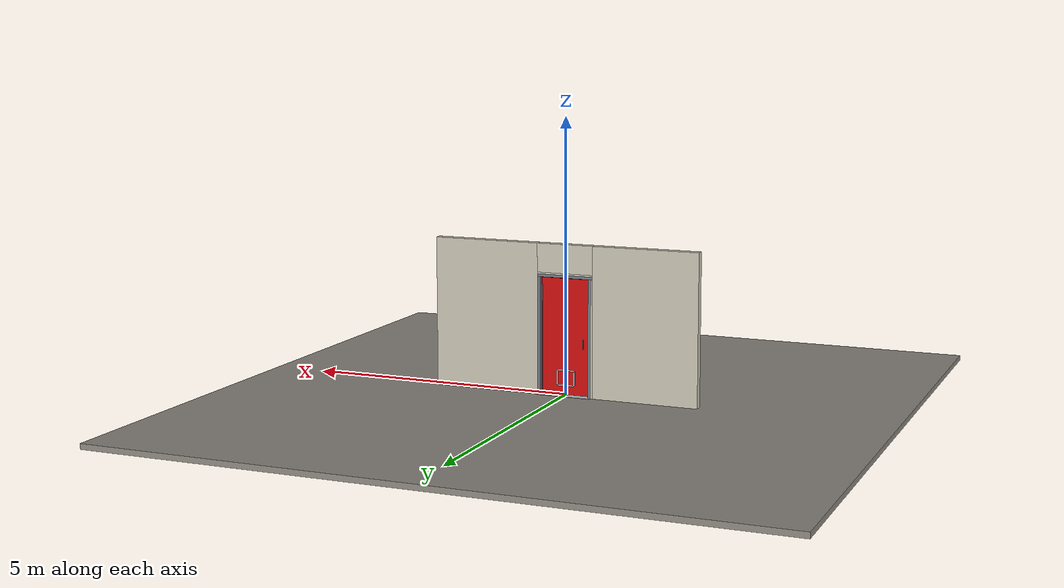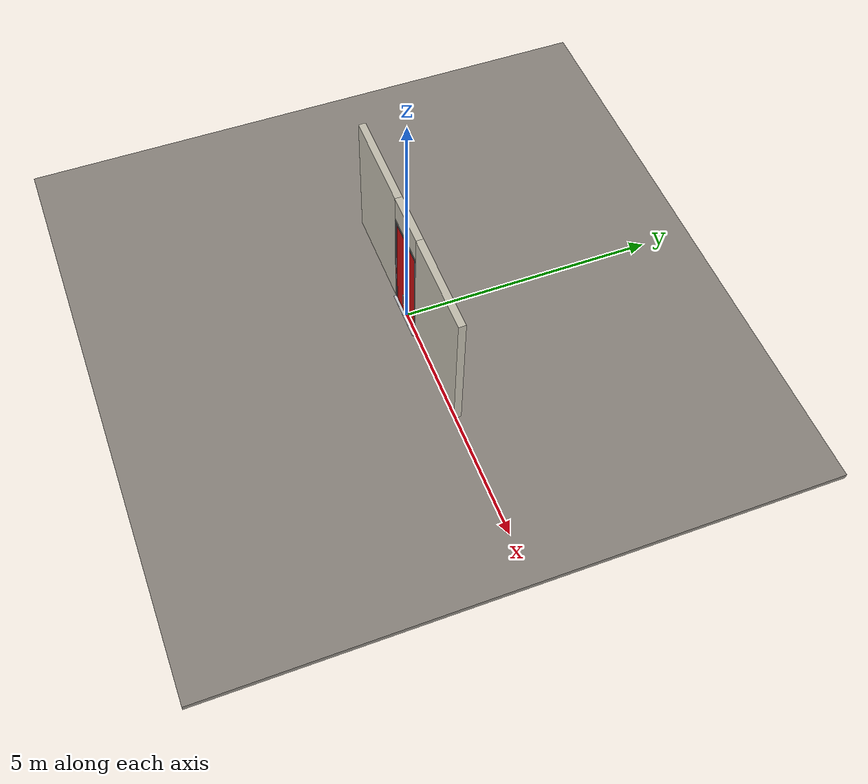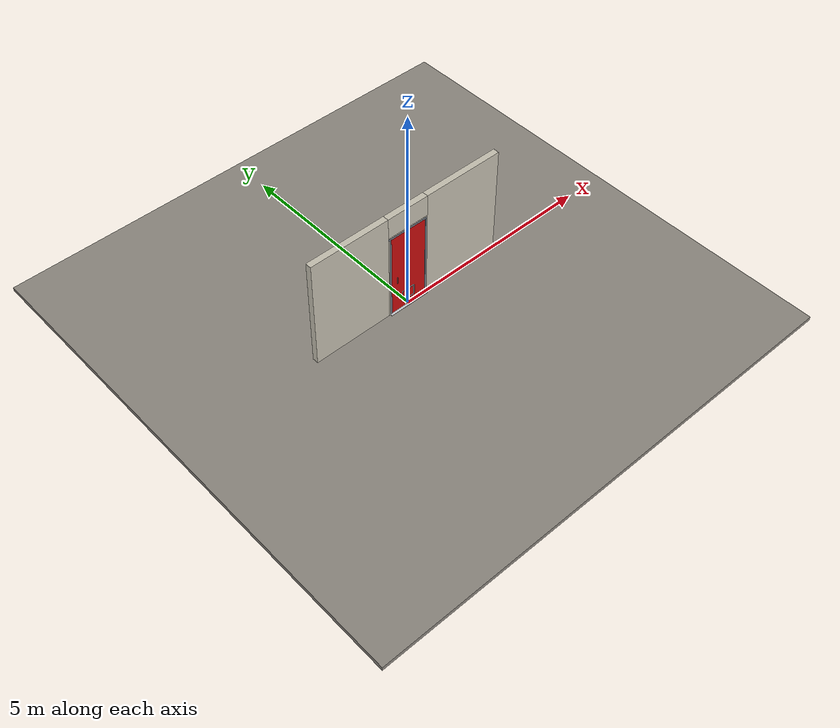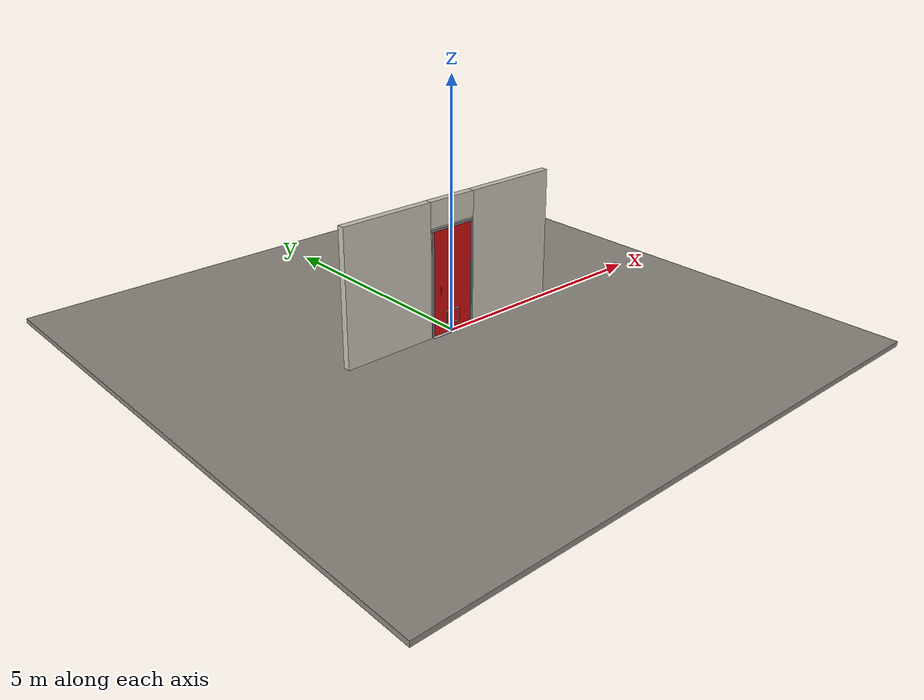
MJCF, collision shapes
<?xml version="1.0" ?>
<mujoco model="db0519_swing_single_full">
  <compiler angle="radian" meshdir="../../hardware" texturedir="../../textures" autolimits="true" inertiafromgeom="false"/>
  <option timestep="0.002" integrator="implicitfast" cone="elliptic" impratio="10" noslip_iterations="3">
    <flag multiccd="enable"/>
  </option>
  <size memory="16M"/>
  <default>
    <geom condim="4" solref="0.005 1" solimp="0.95 0.99 0.001"/>
    <joint solreflimit="0.005 1" solimplimit="0.95 0.99 0.001"/>
    <tendon solreflimit="0.005 1"/>
    <equality solref="0.002 1"/>
  </default>
  <visual>
    <headlight ambient="0.4 0.4 0.4" diffuse="0.7 0.7 0.7" specular="0.2 0.2 0.2"/>
    <quality shadowsize="4096"/>
    <map znear="0.01" zfar="60"/>
  </visual>
  <asset>
    <mesh name="hinge_e22b26c0c1" file="hinge_e22b26c0c1.obj"/>
    <mesh name="hinge_jamb_e1d088f8dc" file="hinge_jamb_e1d088f8dc.obj"/>
    <mesh name="pull_1e5d69a91a" file="pull_1e5d69a91a.obj"/>
    <material name="mat_floor" rgba="0.55 0.53 0.5 1" specular="0.2" shininess="0.15" reflectance="0"/>
    <material name="mat_wall" rgba="0.78 0.76 0.7 1" specular="0.2" shininess="0.1" reflectance="0"/>
    <material name="mat_leaf" rgba="0.8 0.05 0.05 1" specular="0.23" shininess="0.42" reflectance="0.02"/>
    <material name="mat_hinge" rgba="0.65 0.66 0.68 1" specular="0.74" shininess="0.5" reflectance="0.36"/>
    <material name="mat_op_stainless" rgba="0.75 0.76 0.77 1" specular="0.8" shininess="0.65" reflectance="0.4"/>
    <material name="mat_frame" rgba="0.45 0.48 0.52 1" specular="0.32" shininess="0.6" reflectance="0.08"/>
    <material name="mat_seal" rgba="0.1 0.1 0.1 1" specular="0.2" shininess="0.1" reflectance="0"/>
    <material name="mat_threshold" rgba="0.8 0.81 0.83 1" specular="0.8" shininess="0.6" reflectance="0.4"/>
    <material name="mat_vent" rgba="0.8 0.81 0.83 1" specular="0.8" shininess="0.6" reflectance="0.4"/>
    <texture name="skybox" type="skybox" builtin="gradient" rgb1="0.6 0.7 0.85" rgb2="0.9 0.92 0.95" width="256" height="256"/>
  </asset>
  <worldbody>
    <light name="sun" pos="1.5 -2.5 4" dir="-0.3 0.5 -0.8" directional="true" diffuse="0.8 0.8 0.8" specular="0.3 0.3 0.3" castshadow="true"/>
    <light name="fill" pos="-1.5 2.5 3" dir="0.3 -0.5 -0.7" directional="true" diffuse="0.35 0.35 0.4" castshadow="false"/>
    <camera name="robot_view" pos="0 -2.594313 1.812087" xyaxes="1 0 0 0 0.26963 0.962964" fovy="52"/>
    <camera name="far_view" pos="0 2.681312 1.812087" xyaxes="-1 0 0 0 -0.26963 0.962964" fovy="52"/>
    <camera name="iso" pos="-2.004737 -2.172262 2.234138" xyaxes="0.741536 -0.670913 0 0.242917 0.268487 0.932151" fovy="46"/>
    <camera name="detail_handle" pos="-0.1715 -0.882 1.245" xyaxes="0.97561 0.219512 0 -0.070934 0.315262 0.94635" fovy="38"/>
    <geom name="floor" type="box" size="6 6 0.05" pos="0 0 -0.05" material="mat_floor" group="0" contype="1" conaffinity="1" friction="0.8 0.005 0.0001" density="2400"/>
    <geom name="wall_left" type="box" size="0.97975 0.0725 1.3735" pos="-1.52025 0.0435 1.3735" material="mat_wall" group="0" contype="1" conaffinity="1" friction="0.6 0.005 0.0001" density="800"/>
    <geom name="wall_right" type="box" size="0.99475 0.0725 1.3735" pos="1.50525 0.0435 1.3735" material="mat_wall" group="0" contype="1" conaffinity="1" friction="0.6 0.005 0.0001" density="800"/>
    <geom name="wall_header" type="box" size="0.5255 0.0725 0.26" pos="-0.015 0.0435 2.487" material="mat_wall" group="0" contype="1" conaffinity="1" friction="0.6 0.005 0.0001" density="800"/>
    <geom name="hinge_0_jamb" type="mesh" mesh="hinge_jamb_e1d088f8dc" pos="0.4575 -0.029 0.259" quat="0 0 1 0" material="mat_hinge" group="1" contype="0" conaffinity="0" density="7850"/>
    <geom name="hinge_1_jamb" type="mesh" mesh="hinge_jamb_e1d088f8dc" pos="0.4575 -0.029 1.076" quat="0 0 1 0" material="mat_hinge" group="1" contype="0" conaffinity="0" density="7850"/>
    <geom name="hinge_2_jamb" type="mesh" mesh="hinge_jamb_e1d088f8dc" pos="0.4575 -0.029 1.963" quat="0 0 1 0" material="mat_hinge" group="1" contype="0" conaffinity="0" density="7850"/>
    <geom name="jamb_hinge" type="box" size="0.025 0.0725 1.0735" pos="0.4855 0.0435 1.0735" material="mat_frame" group="0" contype="1" conaffinity="1" friction="0.6 0.005 0.0001" density="300"/>
    <geom name="jamb_strike" type="box" size="0.025 0.0725 1.0735" pos="-0.4855 0.0435 1.0735" material="mat_frame" group="0" contype="1" conaffinity="1" friction="0.6 0.005 0.0001" density="300"/>
    <geom name="stud_strike" type="box" size="0.015 0.0725 1.0735" pos="-0.5255 0.0435 1.0735" material="mat_wall" group="0" contype="1" conaffinity="1" friction="0.6 0.005 0.0001" density="500"/>
    <geom name="jamb_head" type="box" size="0.5255 0.0725 0.025" pos="-0.015 0.0435 2.172" material="mat_frame" group="0" contype="1" conaffinity="1" friction="0.6 0.005 0.0001" density="300"/>
    <geom name="head_stud" type="box" size="0.5255 0.0725 0.015" pos="-0.015 0.0435 2.212" material="mat_wall" group="0" contype="1" conaffinity="1" friction="0.6 0.005 0.0001" density="500"/>
    <geom name="stop_hinge" type="box" size="0.0055 0.016 1.0735" pos="0.455 0.0385 1.0735" material="mat_frame" group="0" contype="1" conaffinity="1" friction="0.6 0.005 0.0001" density="300"/>
    <geom name="stop_strike" type="box" size="0.0055 0.016 1.0735" pos="-0.455 0.0385 1.0735" material="mat_frame" group="0" contype="1" conaffinity="1" friction="0.6 0.005 0.0001" density="300"/>
    <geom name="stop_head" type="box" size="0.4605 0.016 0.0055" pos="0 0.0385 2.1415" material="mat_frame" group="0" contype="1" conaffinity="1" friction="0.6 0.005 0.0001" density="300"/>
    <geom name="seal_hinge" type="box" size="0.004 0.002 1.0735" pos="0.4575 0.024 1.0735" material="mat_seal" group="1" contype="0" conaffinity="0" density="1100"/>
    <geom name="seal_strike" type="box" size="0.004 0.002 1.0735" pos="-0.4575 0.024 1.0735" material="mat_seal" group="1" contype="0" conaffinity="0" density="1100"/>
    <geom name="seal_head" type="box" size="0.4405 0.002 0.008" pos="0 0.024 2.135" material="mat_seal" group="1" contype="0" conaffinity="0" density="1100"/>
    <geom name="threshold" type="box" size="0.5105 0.1225 0.004" pos="0 0.0435 0.004" material="mat_threshold" group="0" contype="1" conaffinity="1" friction="0.6 0.005 0.0001" density="2700"/>
    <site name="approach_point" pos="0 -1.5 0" quat="1 0 0 0" size="0.05" rgba="0.2 0.9 0.2 0.5" group="4"/>
    <site name="goal_point" pos="0 1.5 0" quat="1 0 0 0" size="0.05" rgba="0.2 0.9 0.2 0.5" group="4"/>
    <site name="door_plane_center" pos="0 0 1.0735" quat="1 0 0 0" size="0.02" rgba="0.2 0.9 0.2 0.5" group="4"/>
    <body name="leaf" pos="0.4605 0 0">
      <inertial pos="-0.459723 -0.000255 1.058863" mass="49.979128" quat="0.500287 -0.501094 -0.498893 -0.499724" diaginertia="3.58227216 18.933091802 22.488647106"/>
      <joint name="leaf_hinge" type="hinge" axis="0 0 1" pos="-0.003 -0.029 0" limited="true" range="0 1.919862" solreflimit="0.02 1" damping="0.318966" frictionloss="1.198916" armature="0.02"/>
      <geom name="leaf_slab" type="box" size="0.457 0.022 1.067" pos="-0.46 0 1.076" material="mat_leaf" group="0" contype="1" conaffinity="1" friction="0.42 0.005 0.0001" density="1"/>
      <geom name="hinge_0" type="mesh" mesh="hinge_e22b26c0c1" pos="-0.003 -0.029 0.259" quat="0 0 1 0" material="mat_hinge" group="1" contype="0" conaffinity="0" density="7850"/>
      <geom name="hinge_1" type="mesh" mesh="hinge_e22b26c0c1" pos="-0.003 -0.029 1.076" quat="0 0 1 0" material="mat_hinge" group="1" contype="0" conaffinity="0" density="7850"/>
      <geom name="hinge_2" type="mesh" mesh="hinge_e22b26c0c1" pos="-0.003 -0.029 1.963" quat="0 0 1 0" material="mat_hinge" group="1" contype="0" conaffinity="0" density="7850"/>
      <geom name="leaf_pull_n" type="mesh" mesh="pull_1e5d69a91a" pos="-0.812 -0.022 0.965" quat="0 0 -0.707107 0.707107" material="mat_op_stainless" group="1" contype="0" conaffinity="0" density="3000"/>
      <geom name="leaf_pull_col_n" type="capsule" size="0.0095 0.08" pos="-0.812 -0.082 0.965" material="mat_op_stainless" group="3" contype="1" conaffinity="1" rgba="0.8 0.3 0.3 0.25" friction="0.7 0.01 0.0001" density="3000"/>
      <geom name="leaf_pull_p" type="mesh" mesh="pull_1e5d69a91a" pos="-0.812 0.022 0.965" quat="0 0 0.707107 0.707107" material="mat_op_stainless" group="1" contype="0" conaffinity="0" density="3000"/>
      <geom name="leaf_pull_col_p" type="capsule" size="0.0095 0.08" pos="-0.812 0.082 0.965" material="mat_op_stainless" group="3" contype="1" conaffinity="1" rgba="0.8 0.3 0.3 0.25" friction="0.7 0.01 0.0001" density="3000"/>
      <geom name="louver_vent_stile_n_l" type="box" size="0.012 0.002 0.137" pos="-0.622 -0.024 0.314" material="mat_vent" group="2" contype="0" conaffinity="0" density="2700"/>
      <geom name="louver_vent_stile_n_r" type="box" size="0.012 0.002 0.137" pos="-0.298 -0.024 0.314" material="mat_vent" group="2" contype="0" conaffinity="0" density="2700"/>
      <geom name="louver_vent_rail_n_b" type="box" size="0.15 0.002 0.012" pos="-0.46 -0.024 0.177" material="mat_vent" group="2" contype="0" conaffinity="0" density="2700"/>
      <geom name="louver_vent_rail_n_t" type="box" size="0.15 0.002 0.012" pos="-0.46 -0.024 0.451" material="mat_vent" group="2" contype="0" conaffinity="0" density="2700"/>
      <geom name="louver_vent_stile_p_l" type="box" size="0.012 0.002 0.137" pos="-0.622 0.024 0.314" material="mat_vent" group="2" contype="0" conaffinity="0" density="2700"/>
      <geom name="louver_vent_stile_p_r" type="box" size="0.012 0.002 0.137" pos="-0.298 0.024 0.314" material="mat_vent" group="2" contype="0" conaffinity="0" density="2700"/>
      <geom name="louver_vent_rail_p_b" type="box" size="0.15 0.002 0.012" pos="-0.46 0.024 0.177" material="mat_vent" group="2" contype="0" conaffinity="0" density="2700"/>
      <geom name="louver_vent_rail_p_t" type="box" size="0.15 0.002 0.012" pos="-0.46 0.024 0.451" material="mat_vent" group="2" contype="0" conaffinity="0" density="2700"/>
      <geom name="louver_vent_slat_0" type="box" size="0.15 0.0015 0.015" pos="-0.46 0 0.209833" quat="0.965926 -0.258819 0 0" material="mat_vent" group="2" contype="0" conaffinity="0" density="2700"/>
      <geom name="louver_vent_slat_1" type="box" size="0.15 0.0015 0.015" pos="-0.46 0 0.2515" quat="0.965926 -0.258819 0 0" material="mat_vent" group="2" contype="0" conaffinity="0" density="2700"/>
      <geom name="louver_vent_slat_2" type="box" size="0.15 0.0015 0.015" pos="-0.46 0 0.293167" quat="0.965926 -0.258819 0 0" material="mat_vent" group="2" contype="0" conaffinity="0" density="2700"/>
      <geom name="louver_vent_slat_3" type="box" size="0.15 0.0015 0.015" pos="-0.46 0 0.334833" quat="0.965926 -0.258819 0 0" material="mat_vent" group="2" contype="0" conaffinity="0" density="2700"/>
      <geom name="louver_vent_slat_4" type="box" size="0.15 0.0015 0.015" pos="-0.46 0 0.3765" quat="0.965926 -0.258819 0 0" material="mat_vent" group="2" contype="0" conaffinity="0" density="2700"/>
      <geom name="louver_vent_slat_5" type="box" size="0.15 0.0015 0.015" pos="-0.46 0 0.418167" quat="0.965926 -0.258819 0 0" material="mat_vent" group="2" contype="0" conaffinity="0" density="2700"/>
      <site name="leaf_pull_grip_n" pos="-0.812 -0.082 0.965" quat="1 0 0 0" size="0.012" rgba="0.2 0.9 0.2 0.5" group="4"/>
      <site name="leaf_pull_grip_p" pos="-0.812 0.082 0.965" quat="1 0 0 0" size="0.012" rgba="0.2 0.9 0.2 0.5" group="4"/>
      <site name="leaf_edge_mid" pos="-0.917 0 1.067" quat="1 0 0 0" size="0.02" rgba="0.2 0.9 0.2 0.5" group="4"/>
    </body>
  </worldbody>
  <sensor>
    <jointpos name="leaf_hinge_pos" joint="leaf_hinge"/>
    <jointvel name="leaf_hinge_vel" joint="leaf_hinge"/>
  </sensor>
</mujoco>
